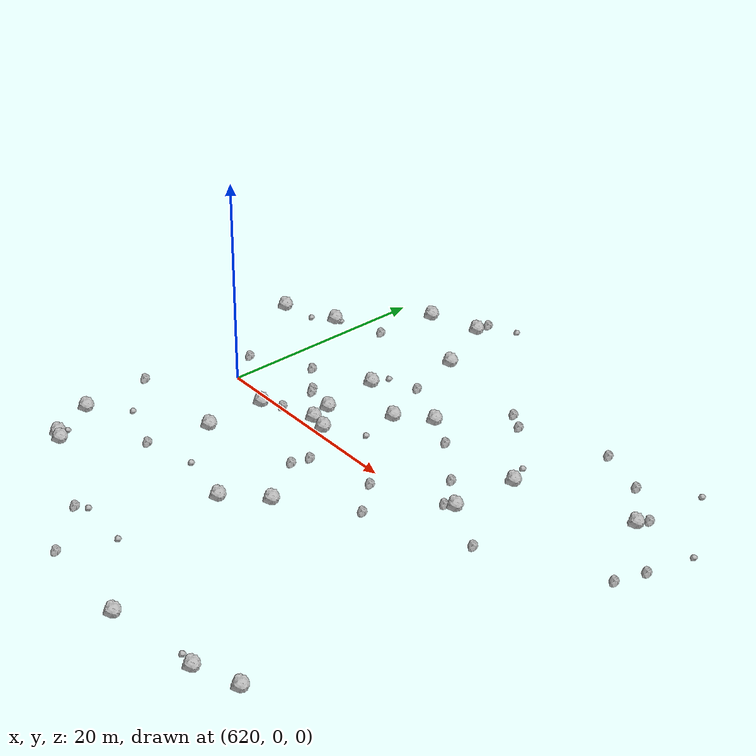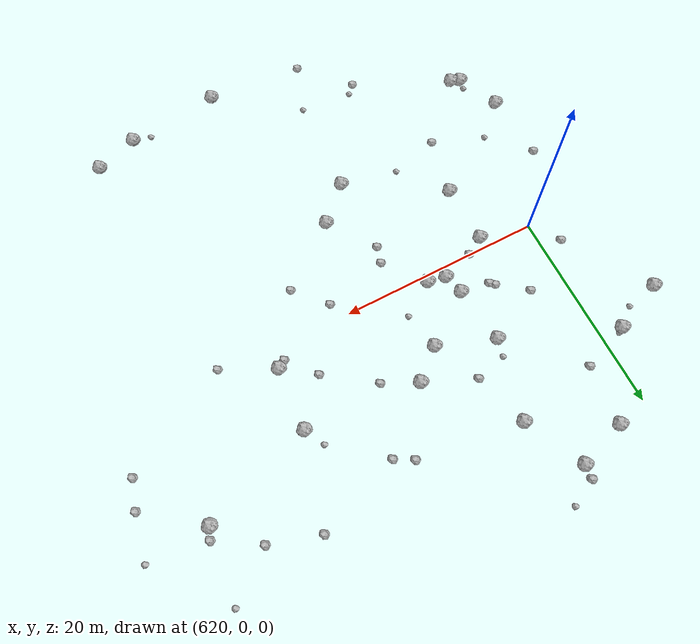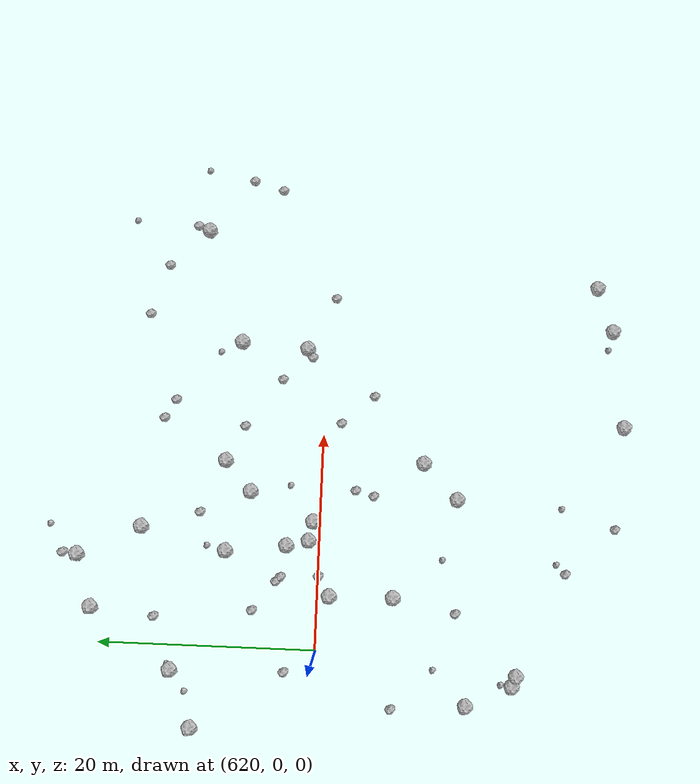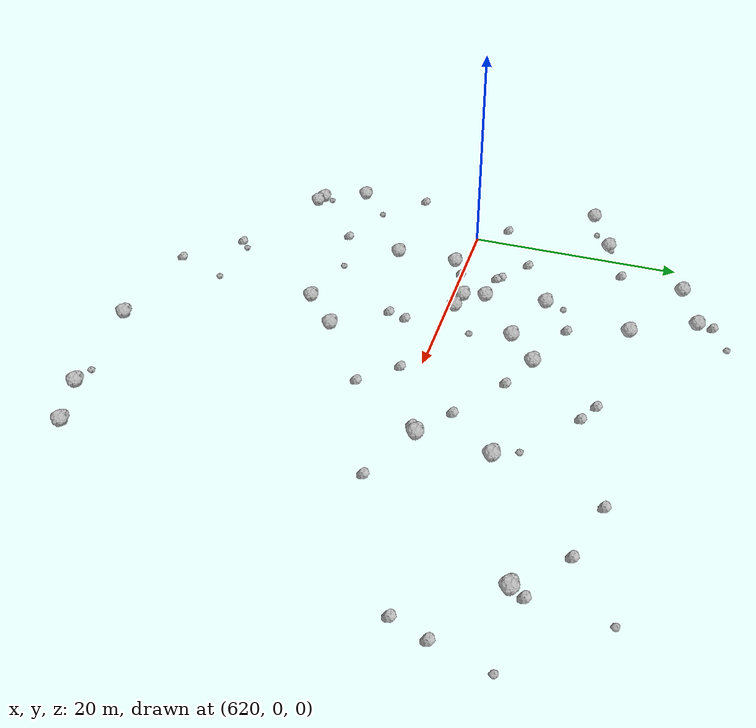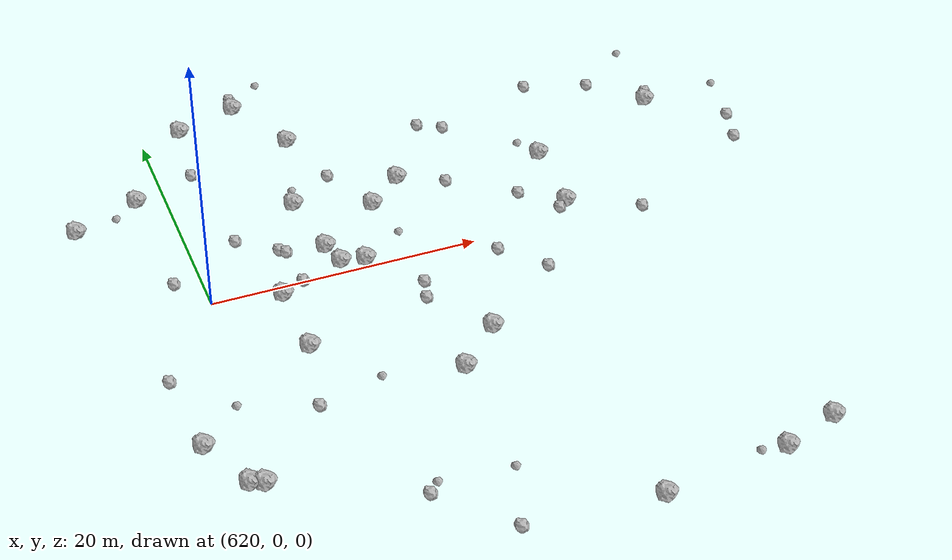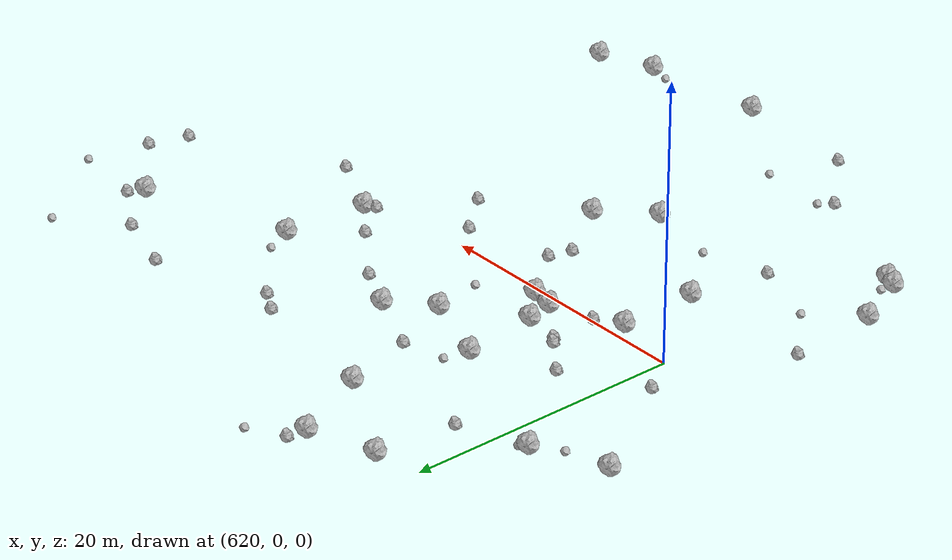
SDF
<sdf version="1.6">
 <world name="default">
  <include><uri>model://sun</uri></include>
  <model name="rock1_16_3">
   <include><uri>model://rock1</uri><pose>623.2727965276853 20.854010927440967 0.5 0 0 0</pose></include>
  </model>
  <model name="rock1_16_4">
   <include><uri>model://rock1</uri><pose>618.4469579610449 -18.404289666419842 0.5 0 0 0</pose></include>
  </model>
  <model name="rock1_16_5">
   <include><uri>model://rock1</uri><pose>648.2802238354398 1.8581734147622733 0.5 0 0 0</pose></include>
  </model>
  <model name="rock1_16_6">
   <include><uri>model://rock1</uri><pose>617.542372300996 -18.03325060648767 0.5 0 0 0</pose></include>
  </model>
  <model name="rock1_16_7">
   <include><uri>model://rock1</uri><pose>631.84088573389 0.6525796395552561 0.5 0 0 0</pose></include>
  </model>
  <model name="rock1_16_8">
   <include><uri>model://rock1</uri><pose>625.1008385160357 -6.981512690269383 0.5 0 0 0</pose></include>
  </model>
  <model name="rock1_16_9">
   <include><uri>model://rock1</uri><pose>628.8660808785118 8.708169213157404 0.5 0 0 0</pose></include>
  </model>
  <model name="rock1_16_10">
   <include><uri>model://rock1</uri><pose>625.0242764959139 -1.0934935486355606 0.5 0 0 0</pose></include>
  </model>
  <model name="rock1_16_11">
   <include><uri>model://rock1</uri><pose>629.542274927153 3.049752576793807 0.5 0 0 0</pose></include>
  </model>
  <model name="rock1_16_12">
   <include><uri>model://rock1</uri><pose>637.2952911348934 9.091701052746316 0.5 0 0 0</pose></include>
  </model>
  <model name="rock1_16_13">
   <include><uri>model://rock1</uri><pose>651.0636819818176 -27.26232987382401 0.5 0 0 0</pose></include>
  </model>
  <model name="rock1_16_14">
   <include><uri>model://rock1</uri><pose>655.2940879222509 -25.794357469600463 0.5 0 0 0</pose></include>
  </model>
  <model name="rock1_16_15">
   <include><uri>model://rock1</uri><pose>630.0590966764413 1.0005905540252371 0.5 0 0 0</pose></include>
  </model>
  <model name="rock1_16_16">
   <include><uri>model://rock1</uri><pose>617.8859165859953 13.20207204267642 0.5 0 0 0</pose></include>
  </model>
  <model name="rock1_16_17">
   <include><uri>model://rock1</uri><pose>612.8133702420655 11.051835108550833 0.5 0 0 0</pose></include>
  </model>
  <model name="rock1_16_18">
   <include><uri>model://rock1</uri><pose>615.650055011889 -13.8308200913639 0.5 0 0 0</pose></include>
  </model>
  <model name="rock1_16_19">
   <include><uri>model://rock1</uri><pose>628.0521708168819 22.45281547092646 0.5 0 0 0</pose></include>
  </model>
  <model name="rock1_16_20">
   <include><uri>model://rock1</uri><pose>634.452587103212 6.6229234553110246 0.5 0 0 0</pose></include>
  </model>
  <model name="rock1_16_21">
   <include><uri>model://rock1</uri><pose>648.7181012711808 8.132260789163652 0.5 0 0 0</pose></include>
  </model>
  <model name="rock1_16_22">
   <include><uri>model://rock1</uri><pose>637.675200205763 -9.518745559833754 0.5 0 0 0</pose></include>
  </model>
  <model name="rock1_16_23">
   <include><uri>model://rock1</uri><pose>634.3831214671953 -12.720654866415725 0.5 0 0 0</pose></include>
  </model>
  <model name="rock1_16_24">
   <include><uri>model://rock1</uri><pose>641.7965540172468 -28.30719633528692 0.5 0 0 0</pose></include>
  </model>
  <model name="rock1_16_25">
   <include><uri>model://rock1</uri><pose>659.6732261378879 11.901594747890002 0.5 0 0 0</pose></include>
  </model>
  <model name="rock1_16_26">
   <include><uri>model://rock1</uri><pose>630.8219972872907 16.644363457645184 0.5 0 0 0</pose></include>
  </model>
  <model name="rock2_16_0">
   <include><uri>model://rock2</uri><pose>664.057206218986 4.944628932509623 0.3 0 0 0</pose></include>
  </model>
  <model name="rock2_16_1">
   <include><uri>model://rock2</uri><pose>643.918633050783 -4.69464573582454 0.3 0 0 0</pose></include>
  </model>
  <model name="rock2_16_2">
   <include><uri>model://rock2</uri><pose>642.9091938793164 14.151750865620286 0.3 0 0 0</pose></include>
  </model>
  <model name="rock2_16_3">
   <include><uri>model://rock2</uri><pose>656.0991171850637 15.573651005125036 0.3 0 0 0</pose></include>
  </model>
  <model name="rock2_16_4">
   <include><uri>model://rock2</uri><pose>626.6148271373298 3.502920460673394 0.3 0 0 0</pose></include>
  </model>
  <model name="rock2_16_5">
   <include><uri>model://rock2</uri><pose>632.1667938289104 -27.49385042588854 0.3 0 0 0</pose></include>
  </model>
  <model name="rock2_16_6">
   <include><uri>model://rock2</uri><pose>664.9171628923342 7.8010908041186795 0.3 0 0 0</pose></include>
  </model>
  <model name="rock2_16_7">
   <include><uri>model://rock2</uri><pose>647.4765074758104 1.3425129840878007 0.3 0 0 0</pose></include>
  </model>
  <model name="rock2_16_8">
   <include><uri>model://rock2</uri><pose>651.1971735699142 17.128948536443147 0.3 0 0 0</pose></include>
  </model>
  <model name="rock2_16_9">
   <include><uri>model://rock2</uri><pose>626.7888565188257 -0.016814574680925176 0.3 0 0 0</pose></include>
  </model>
  <model name="rock2_16_10">
   <include><uri>model://rock2</uri><pose>628.1399655117459 23.859951165525402 0.3 0 0 0</pose></include>
  </model>
  <model name="rock2_16_11">
   <include><uri>model://rock2</uri><pose>626.200307577228 3.902408495255713 0.3 0 0 0</pose></include>
  </model>
  <model name="rock2_16_12">
   <include><uri>model://rock2</uri><pose>618.0147582302653 2.8232389050736018 0.3 0 0 0</pose></include>
  </model>
  <model name="rock2_16_13">
   <include><uri>model://rock2</uri><pose>632.3412554355693 11.27180188279958 0.3 0 0 0</pose></include>
  </model>
  <model name="rock2_16_14">
   <include><uri>model://rock2</uri><pose>641.1389170374821 15.15537357667533 0.3 0 0 0</pose></include>
  </model>
  <model name="rock2_16_15">
   <include><uri>model://rock2</uri><pose>615.0935214345952 -7.0495442151036976 0.3 0 0 0</pose></include>
  </model>
  <model name="rock2_16_16">
   <include><uri>model://rock2</uri><pose>634.417124295191 -4.91022441672736 0.3 0 0 0</pose></include>
  </model>
  <model name="rock2_16_17">
   <include><uri>model://rock2</uri><pose>634.8855981783789 -3.212235425718653 0.3 0 0 0</pose></include>
  </model>
  <model name="rock2_16_18">
   <include><uri>model://rock2</uri><pose>645.2282918439665 4.100539556072555 0.3 0 0 0</pose></include>
  </model>
  <model name="rock2_16_19">
   <include><uri>model://rock2</uri><pose>641.209946535588 -1.639068643499325 0.3 0 0 0</pose></include>
  </model>
  <model name="rock2_16_20">
   <include><uri>model://rock2</uri><pose>660.1519683208462 13.034000919709506 0.3 0 0 0</pose></include>
  </model>
  <model name="rock2_16_21">
   <include><uri>model://rock2</uri><pose>627.8690288395593 -22.903366396876592 0.3 0 0 0</pose></include>
  </model>
  <model name="rock2_16_22">
   <include><uri>model://rock2</uri><pose>622.5964902382391 15.032001458119737 0.3 0 0 0</pose></include>
  </model>
  <model name="rock2_16_23">
   <include><uri>model://rock2</uri><pose>623.858647974205 -12.771932223138428 0.3 0 0 0</pose></include>
  </model>
  <model name="rock2_16_24">
   <include><uri>model://rock2</uri><pose>640.6200883460498 7.463736633374012 0.3 0 0 0</pose></include>
  </model>
  <model name="rock2_16_25">
   <include><uri>model://rock2</uri><pose>653.3596890562645 -0.6772206914630914 0.3 0 0 0</pose></include>
  </model>
  <model name="rock2_16_26">
   <include><uri>model://rock2</uri><pose>623.4764384651169 6.005555510379196 0.3 0 0 0</pose></include>
  </model>
  <model name="rock3_16_0">
   <include><uri>model://rock3</uri><pose>633.8626042573627 -22.574524505704574 0.2 0 0 0</pose></include>
  </model>
  <model name="rock3_16_1">
   <include><uri>model://rock3</uri><pose>618.6924604856098 -10.847749435785307 0.2 0 0 0</pose></include>
  </model>
  <model name="rock3_16_2">
   <include><uri>model://rock3</uri><pose>665.8381002094698 12.253355413099406 0.2 0 0 0</pose></include>
  </model>
  <model name="rock3_16_3">
   <include><uri>model://rock3</uri><pose>617.6054243717007 -17.0921894345135 0.2 0 0 0</pose></include>
  </model>
  <model name="rock3_16_4">
   <include><uri>model://rock3</uri><pose>628.6745073934851 -22.095721797867576 0.2 0 0 0</pose></include>
  </model>
  <model name="rock3_16_5">
   <include><uri>model://rock3</uri><pose>629.2364237468391 10.457746956097452 0.2 0 0 0</pose></include>
  </model>
  <model name="rock3_16_6">
   <include><uri>model://rock3</uri><pose>649.2620379104098 -26.917695054595132 0.2 0 0 0</pose></include>
  </model>
  <model name="rock3_16_7">
   <include><uri>model://rock3</uri><pose>635.1280190833453 2.8766226096393837 0.2 0 0 0</pose></include>
  </model>
  <model name="rock3_16_8">
   <include><uri>model://rock3</uri><pose>628.6992487866081 -11.521447892452397 0.2 0 0 0</pose></include>
  </model>
  <model name="rock3_16_9">
   <include><uri>model://rock3</uri><pose>615.9456263898816 11.772322638103766 0.2 0 0 0</pose></include>
  </model>
  <model name="rock3_16_10">
   <include><uri>model://rock3</uri><pose>647.6914756688161 10.123930115607408 0.2 0 0 0</pose></include>
  </model>
  <model name="rock3_16_11">
   <include><uri>model://rock3</uri><pose>618.3182758167981 13.520860395487993 0.2 0 0 0</pose></include>
  </model>
  <model name="rock3_16_12">
   <include><uri>model://rock3</uri><pose>660.4606148970453 19.019682490411512 0.2 0 0 0</pose></include>
  </model>
  <model name="rock3_16_13">
   <include><uri>model://rock3</uri><pose>630.7045432894457 25.155673969105074 0.2 0 0 0</pose></include>
  </model>
 </world>
</sdf>
